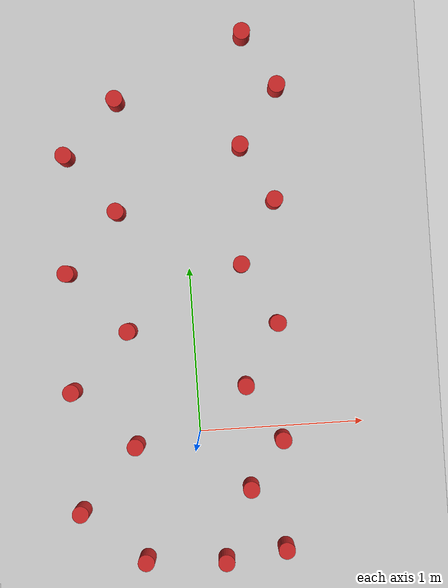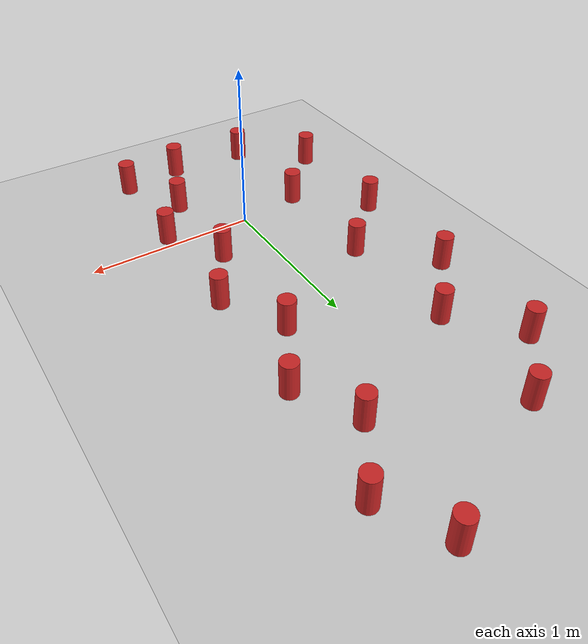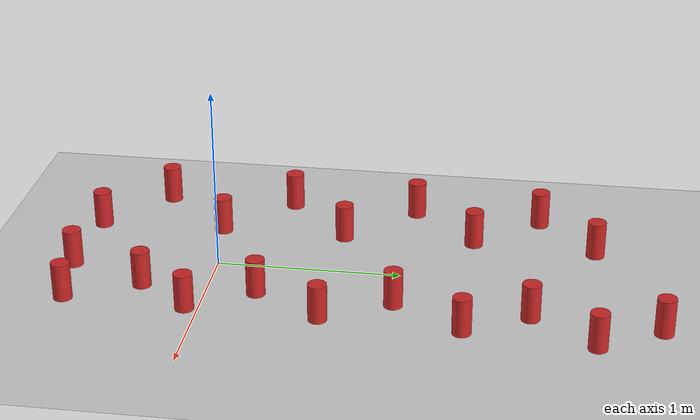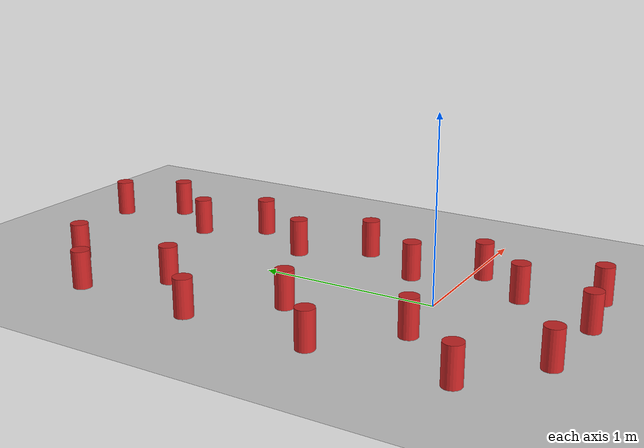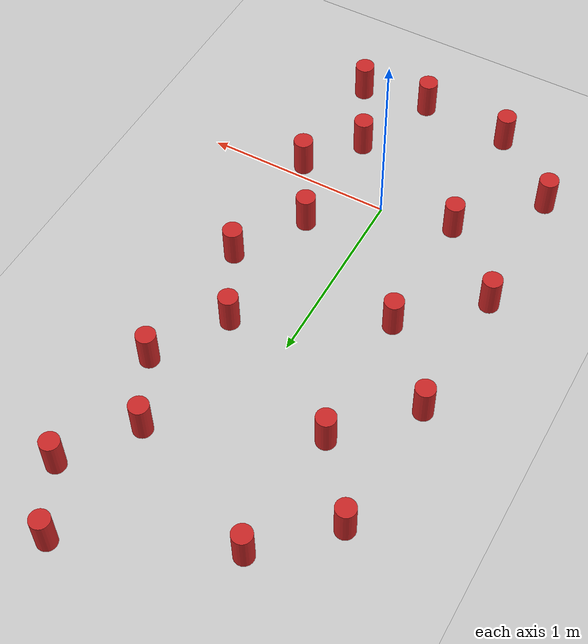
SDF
<sdf version="1.7">
 <world name="default">
  <model name="ground_plane">
   <static>1</static>
   <link name="link">
    <collision name="collision">
     <geometry><plane><normal>0 0 1</normal><size>100 100</size></plane></geometry>
     <surface>
      <contact><collide_bitmask>65535</collide_bitmask></contact>
      <friction><ode><mu>100</mu><mu2>50</mu2></ode></friction>
     </surface>
    </collision>
    <visual name="visual">
     <cast_shadows>0</cast_shadows>
     <geometry><plane><normal>0 0 1</normal><size>100 100</size></plane></geometry>
     <material>
      <script><uri>file://media/materials/scripts/gazebo.material</uri><name>Gazebo/Grey</name></script>
     </material>
    </visual>
   </link>
  </model>
  <model name="static2">
   <link name="link_0">
    <inertial>
     <mass>0.00215539</mass>
     <inertia>
      <ixx>9.22e-06</ixx>
      <ixy>0</ixy>
      <ixz>0</ixz>
      <iyy>9.22e-06</iyy>
      <iyz>0</iyz>
      <izz>2.78e-06</izz>
     </inertia>
    </inertial>
    <pose>0.341007 0.332546 -0 0 -0 0</pose>
    <visual name="visual">
     <geometry><cylinder><radius>0.0508338</radius><length>0.208743</length></cylinder></geometry>
     <material>
      <lighting>1</lighting>
      <script><uri>file://media/materials/scripts/gazebo.material</uri><name>Gazebo/Red</name></script>
      <shader type="pixel"><normal_map>__default__</normal_map></shader>
      <ambient>1 0 0 1</ambient>
      <diffuse>1 0 0 1</diffuse>
      <specular>0.1 0.1 0.1 1</specular>
      <emissive>0 0 0 1</emissive>
     </material>
    </visual>
    <collision name="collision">
     <geometry><cylinder><radius>0.050834</radius><length>0.208743</length></cylinder></geometry>
     <surface>
      <friction>
       <ode><mu>1</mu><mu2>1</mu2><fdir1>0 0 0</fdir1><slip1>0</slip1><slip2>0</slip2></ode>
       <torsional>
        <coefficient>1</coefficient>
        <patch_radius>0</patch_radius>
        <surface_radius>0</surface_radius>
        <use_patch_radius>1</use_patch_radius>
        <ode><slip>0</slip></ode>
       </torsional>
      </friction>
      <bounce><restitution_coefficient>0</restitution_coefficient><threshold>1e+06</threshold></bounce>
      <contact>
       <collide_without_contact>0</collide_without_contact>
       <collide_without_contact_bitmask>1</collide_without_contact_bitmask>
       <collide_bitmask>1</collide_bitmask>
       <ode>
        <soft_cfm>0</soft_cfm>
        <soft_erp>0.2</soft_erp>
        <kp>1e+13</kp>
        <kd>1</kd>
        <max_vel>0.01</max_vel>
        <min_depth>0</min_depth>
       </ode>
       <bullet>
        <split_impulse>1</split_impulse>
        <split_impulse_penetration_threshold>-0.01</split_impulse_penetration_threshold>
        <soft_cfm>0</soft_cfm>
        <soft_erp>0.2</soft_erp>
        <kp>1e+13</kp>
        <kd>1</kd>
       </bullet>
      </contact>
     </surface>
    </collision>
   </link>
   <link name="link_0_clone">
    <inertial>
     <mass>0.00215539</mass>
     <inertia>
      <ixx>9.22e-06</ixx>
      <ixy>0</ixy>
      <ixz>0</ixz>
      <iyy>9.22e-06</iyy>
      <iyz>0</iyz>
      <izz>2.78e-06</izz>
     </inertia>
    </inertial>
    <pose>0.321309 -0.399135 -0 0 -0 0</pose>
    <visual name="visual">
     <geometry><cylinder><radius>0.0508338</radius><length>0.208743</length></cylinder></geometry>
     <material>
      <lighting>1</lighting>
      <script><uri>file://media/materials/scripts/gazebo.material</uri><name>Gazebo/Red</name></script>
      <shader type="pixel"><normal_map>__default__</normal_map></shader>
      <ambient>1 0 0 1</ambient>
      <diffuse>1 0 0 1</diffuse>
      <specular>0.1 0.1 0.1 1</specular>
      <emissive>0 0 0 1</emissive>
     </material>
    </visual>
    <collision name="collision">
     <geometry><cylinder><radius>0.050834</radius><length>0.208743</length></cylinder></geometry>
     <surface>
      <friction>
       <ode><mu>1</mu><mu2>1</mu2><fdir1>0 0 0</fdir1><slip1>0</slip1><slip2>0</slip2></ode>
       <torsional>
        <coefficient>1</coefficient>
        <patch_radius>0</patch_radius>
        <surface_radius>0</surface_radius>
        <use_patch_radius>1</use_patch_radius>
        <ode><slip>0</slip></ode>
       </torsional>
      </friction>
      <bounce><restitution_coefficient>0</restitution_coefficient><threshold>1e+06</threshold></bounce>
      <contact>
       <collide_without_contact>0</collide_without_contact>
       <collide_without_contact_bitmask>1</collide_without_contact_bitmask>
       <collide_bitmask>1</collide_bitmask>
       <ode>
        <soft_cfm>0</soft_cfm>
        <soft_erp>0.2</soft_erp>
        <kp>1e+13</kp>
        <kd>1</kd>
        <max_vel>0.01</max_vel>
        <min_depth>0</min_depth>
       </ode>
       <bullet>
        <split_impulse>1</split_impulse>
        <split_impulse_penetration_threshold>-0.01</split_impulse_penetration_threshold>
        <soft_cfm>0</soft_cfm>
        <soft_erp>0.2</soft_erp>
        <kp>1e+13</kp>
        <kd>1</kd>
       </bullet>
      </contact>
     </surface>
    </collision>
   </link>
   <link name="link_0_clone_0">
    <inertial>
     <mass>0.00215539</mass>
     <inertia>
      <ixx>9.22e-06</ixx>
      <ixy>0</ixy>
      <ixz>0</ixz>
      <iyy>9.22e-06</iyy>
      <iyz>0</iyz>
      <izz>2.78e-06</izz>
     </inertia>
    </inertial>
    <pose>0.537186 -0.03451 -0 0 -0 0</pose>
    <visual name="visual">
     <geometry><cylinder><radius>0.0508338</radius><length>0.208743</length></cylinder></geometry>
     <material>
      <lighting>1</lighting>
      <script><uri>file://media/materials/scripts/gazebo.material</uri><name>Gazebo/Red</name></script>
      <shader type="pixel"><normal_map>__default__</normal_map></shader>
      <ambient>1 0 0 1</ambient>
      <diffuse>1 0 0 1</diffuse>
      <specular>0.1 0.1 0.1 1</specular>
      <emissive>0 0 0 1</emissive>
     </material>
    </visual>
    <collision name="collision">
     <geometry><cylinder><radius>0.050834</radius><length>0.208743</length></cylinder></geometry>
     <surface>
      <friction>
       <ode><mu>1</mu><mu2>1</mu2><fdir1>0 0 0</fdir1><slip1>0</slip1><slip2>0</slip2></ode>
       <torsional>
        <coefficient>1</coefficient>
        <patch_radius>0</patch_radius>
        <surface_radius>0</surface_radius>
        <use_patch_radius>1</use_patch_radius>
        <ode><slip>0</slip></ode>
       </torsional>
      </friction>
      <bounce><restitution_coefficient>0</restitution_coefficient><threshold>1e+06</threshold></bounce>
      <contact>
       <collide_without_contact>0</collide_without_contact>
       <collide_without_contact_bitmask>1</collide_without_contact_bitmask>
       <collide_bitmask>1</collide_bitmask>
       <ode>
        <soft_cfm>0</soft_cfm>
        <soft_erp>0.2</soft_erp>
        <kp>1e+13</kp>
        <kd>1</kd>
        <max_vel>0.01</max_vel>
        <min_depth>0</min_depth>
       </ode>
       <bullet>
        <split_impulse>1</split_impulse>
        <split_impulse_penetration_threshold>-0.01</split_impulse_penetration_threshold>
        <soft_cfm>0</soft_cfm>
        <soft_erp>0.2</soft_erp>
        <kp>1e+13</kp>
        <kd>1</kd>
       </bullet>
      </contact>
     </surface>
    </collision>
   </link>
   <link name="link_0_clone_1">
    <inertial>
     <mass>0.00215539</mass>
     <inertia>
      <ixx>9.22e-06</ixx>
      <ixy>0</ixy>
      <ixz>0</ixz>
      <iyy>9.22e-06</iyy>
      <iyz>0</iyz>
      <izz>2.78e-06</izz>
     </inertia>
    </inertial>
    <pose>0.564834 0.70816 -0 0 -0 0</pose>
    <visual name="visual">
     <geometry><cylinder><radius>0.0508338</radius><length>0.208743</length></cylinder></geometry>
     <material>
      <lighting>1</lighting>
      <script><uri>file://media/materials/scripts/gazebo.material</uri><name>Gazebo/Red</name></script>
      <shader type="pixel"><normal_map>__default__</normal_map></shader>
      <ambient>1 0 0 1</ambient>
      <diffuse>1 0 0 1</diffuse>
      <specular>0.1 0.1 0.1 1</specular>
      <emissive>0 0 0 1</emissive>
     </material>
    </visual>
    <collision name="collision">
     <geometry><cylinder><radius>0.050834</radius><length>0.208743</length></cylinder></geometry>
     <surface>
      <friction>
       <ode><mu>1</mu><mu2>1</mu2><fdir1>0 0 0</fdir1><slip1>0</slip1><slip2>0</slip2></ode>
       <torsional>
        <coefficient>1</coefficient>
        <patch_radius>0</patch_radius>
        <surface_radius>0</surface_radius>
        <use_patch_radius>1</use_patch_radius>
        <ode><slip>0</slip></ode>
       </torsional>
      </friction>
      <bounce><restitution_coefficient>0</restitution_coefficient><threshold>1e+06</threshold></bounce>
      <contact>
       <collide_without_contact>0</collide_without_contact>
       <collide_without_contact_bitmask>1</collide_without_contact_bitmask>
       <collide_bitmask>1</collide_bitmask>
       <ode>
        <soft_cfm>0</soft_cfm>
        <soft_erp>0.2</soft_erp>
        <kp>1e+13</kp>
        <kd>1</kd>
        <max_vel>0.01</max_vel>
        <min_depth>0</min_depth>
       </ode>
       <bullet>
        <split_impulse>1</split_impulse>
        <split_impulse_penetration_threshold>-0.01</split_impulse_penetration_threshold>
        <soft_cfm>0</soft_cfm>
        <soft_erp>0.2</soft_erp>
        <kp>1e+13</kp>
        <kd>1</kd>
       </bullet>
      </contact>
     </surface>
    </collision>
   </link>
   <link name="link_0_clone_2">
    <inertial>
     <mass>0.00215539</mass>
     <inertia>
      <ixx>9.22e-06</ixx>
      <ixy>0</ixy>
      <ixz>0</ixz>
      <iyy>9.22e-06</iyy>
      <iyz>0</iyz>
      <izz>2.78e-06</izz>
     </inertia>
    </inertial>
    <pose>0.379461 1.04774 -0 0 -0 0</pose>
    <visual name="visual">
     <geometry><cylinder><radius>0.0508338</radius><length>0.208743</length></cylinder></geometry>
     <material>
      <lighting>1</lighting>
      <script><uri>file://media/materials/scripts/gazebo.material</uri><name>Gazebo/Red</name></script>
      <shader type="pixel"><normal_map>__default__</normal_map></shader>
      <ambient>1 0 0 1</ambient>
      <diffuse>1 0 0 1</diffuse>
      <specular>0.1 0.1 0.1 1</specular>
      <emissive>0 0 0 1</emissive>
     </material>
    </visual>
    <collision name="collision">
     <geometry><cylinder><radius>0.050834</radius><length>0.208743</length></cylinder></geometry>
     <surface>
      <friction>
       <ode><mu>1</mu><mu2>1</mu2><fdir1>0 0 0</fdir1><slip1>0</slip1><slip2>0</slip2></ode>
       <torsional>
        <coefficient>1</coefficient>
        <patch_radius>0</patch_radius>
        <surface_radius>0</surface_radius>
        <use_patch_radius>1</use_patch_radius>
        <ode><slip>0</slip></ode>
       </torsional>
      </friction>
      <bounce><restitution_coefficient>0</restitution_coefficient><threshold>1e+06</threshold></bounce>
      <contact>
       <collide_without_contact>0</collide_without_contact>
       <collide_without_contact_bitmask>1</collide_without_contact_bitmask>
       <collide_bitmask>1</collide_bitmask>
       <ode>
        <soft_cfm>0</soft_cfm>
        <soft_erp>0.2</soft_erp>
        <kp>1e+13</kp>
        <kd>1</kd>
        <max_vel>0.01</max_vel>
        <min_depth>0</min_depth>
       </ode>
       <bullet>
        <split_impulse>1</split_impulse>
        <split_impulse_penetration_threshold>-0.01</split_impulse_penetration_threshold>
        <soft_cfm>0</soft_cfm>
        <soft_erp>0.2</soft_erp>
        <kp>1e+13</kp>
        <kd>1</kd>
       </bullet>
      </contact>
     </surface>
    </collision>
   </link>
   <link name="link_0_clone_3">
    <inertial>
     <mass>0.00215539</mass>
     <inertia>
      <ixx>9.22e-06</ixx>
      <ixy>0</ixy>
      <ixz>0</ixz>
      <iyy>9.22e-06</iyy>
      <iyz>0</iyz>
      <izz>2.78e-06</izz>
     </inertia>
    </inertial>
    <pose>0.621634 1.39294 -0 0 -0 0</pose>
    <visual name="visual">
     <geometry><cylinder><radius>0.0508338</radius><length>0.208743</length></cylinder></geometry>
     <material>
      <lighting>1</lighting>
      <script><uri>file://media/materials/scripts/gazebo.material</uri><name>Gazebo/Red</name></script>
      <shader type="pixel"><normal_map>__default__</normal_map></shader>
      <ambient>1 0 0 1</ambient>
      <diffuse>1 0 0 1</diffuse>
      <specular>0.1 0.1 0.1 1</specular>
      <emissive>0 0 0 1</emissive>
     </material>
    </visual>
    <collision name="collision">
     <geometry><cylinder><radius>0.050834</radius><length>0.208743</length></cylinder></geometry>
     <surface>
      <friction>
       <ode><mu>1</mu><mu2>1</mu2><fdir1>0 0 0</fdir1><slip1>0</slip1><slip2>0</slip2></ode>
       <torsional>
        <coefficient>1</coefficient>
        <patch_radius>0</patch_radius>
        <surface_radius>0</surface_radius>
        <use_patch_radius>1</use_patch_radius>
        <ode><slip>0</slip></ode>
       </torsional>
      </friction>
      <bounce><restitution_coefficient>0</restitution_coefficient><threshold>1e+06</threshold></bounce>
      <contact>
       <collide_without_contact>0</collide_without_contact>
       <collide_without_contact_bitmask>1</collide_without_contact_bitmask>
       <collide_bitmask>1</collide_bitmask>
       <ode>
        <soft_cfm>0</soft_cfm>
        <soft_erp>0.2</soft_erp>
        <kp>1e+13</kp>
        <kd>1</kd>
        <max_vel>0.01</max_vel>
        <min_depth>0</min_depth>
       </ode>
       <bullet>
        <split_impulse>1</split_impulse>
        <split_impulse_penetration_threshold>-0.01</split_impulse_penetration_threshold>
        <soft_cfm>0</soft_cfm>
        <soft_erp>0.2</soft_erp>
        <kp>1e+13</kp>
        <kd>1</kd>
       </bullet>
      </contact>
     </surface>
    </collision>
   </link>
   <link name="link_0_clone_3_clone">
    <inertial>
     <mass>0.00215539</mass>
     <inertia>
      <ixx>9.22e-06</ixx>
      <ixy>0</ixy>
      <ixz>0</ixz>
      <iyy>9.22e-06</iyy>
      <iyz>0</iyz>
      <izz>2.78e-06</izz>
     </inertia>
    </inertial>
    <pose>0.432894 1.72328 -0 0 -0 0</pose>
    <visual name="visual">
     <geometry><cylinder><radius>0.0508338</radius><length>0.208743</length></cylinder></geometry>
     <material>
      <lighting>1</lighting>
      <script><uri>file://media/materials/scripts/gazebo.material</uri><name>Gazebo/Red</name></script>
      <shader type="pixel"><normal_map>__default__</normal_map></shader>
      <ambient>1 0 0 1</ambient>
      <diffuse>1 0 0 1</diffuse>
      <specular>0.1 0.1 0.1 1</specular>
      <emissive>0 0 0 1</emissive>
     </material>
    </visual>
    <collision name="collision">
     <geometry><cylinder><radius>0.050834</radius><length>0.208743</length></cylinder></geometry>
     <surface>
      <friction>
       <ode><mu>1</mu><mu2>1</mu2><fdir1>0 0 0</fdir1><slip1>0</slip1><slip2>0</slip2></ode>
       <torsional>
        <coefficient>1</coefficient>
        <patch_radius>0</patch_radius>
        <surface_radius>0</surface_radius>
        <use_patch_radius>1</use_patch_radius>
        <ode><slip>0</slip></ode>
       </torsional>
      </friction>
      <bounce><restitution_coefficient>0</restitution_coefficient><threshold>1e+06</threshold></bounce>
      <contact>
       <collide_without_contact>0</collide_without_contact>
       <collide_without_contact_bitmask>1</collide_without_contact_bitmask>
       <collide_bitmask>1</collide_bitmask>
       <ode>
        <soft_cfm>0</soft_cfm>
        <soft_erp>0.2</soft_erp>
        <kp>1e+13</kp>
        <kd>1</kd>
        <max_vel>0.01</max_vel>
        <min_depth>0</min_depth>
       </ode>
       <bullet>
        <split_impulse>1</split_impulse>
        <split_impulse_penetration_threshold>-0.01</split_impulse_penetration_threshold>
        <soft_cfm>0</soft_cfm>
        <soft_erp>0.2</soft_erp>
        <kp>1e+13</kp>
        <kd>1</kd>
       </bullet>
      </contact>
     </surface>
    </collision>
   </link>
   <link name="link_0_clone_3_clone_0">
    <inertial>
     <mass>0.00215539</mass>
     <inertia>
      <ixx>9.22e-06</ixx>
      <ixy>0</ixy>
      <ixz>0</ixz>
      <iyy>9.22e-06</iyy>
      <iyz>0</iyz>
      <izz>2.78e-06</izz>
     </inertia>
    </inertial>
    <pose>0.523475 -0.737358 -0 0 -0 0</pose>
    <visual name="visual">
     <geometry><cylinder><radius>0.0508338</radius><length>0.208743</length></cylinder></geometry>
     <material>
      <lighting>1</lighting>
      <script><uri>file://media/materials/scripts/gazebo.material</uri><name>Gazebo/Red</name></script>
      <shader type="pixel"><normal_map>__default__</normal_map></shader>
      <ambient>1 0 0 1</ambient>
      <diffuse>1 0 0 1</diffuse>
      <specular>0.1 0.1 0.1 1</specular>
      <emissive>0 0 0 1</emissive>
     </material>
    </visual>
    <collision name="collision">
     <geometry><cylinder><radius>0.050834</radius><length>0.208743</length></cylinder></geometry>
     <surface>
      <friction>
       <ode><mu>1</mu><mu2>1</mu2><fdir1>0 0 0</fdir1><slip1>0</slip1><slip2>0</slip2></ode>
       <torsional>
        <coefficient>1</coefficient>
        <patch_radius>0</patch_radius>
        <surface_radius>0</surface_radius>
        <use_patch_radius>1</use_patch_radius>
        <ode><slip>0</slip></ode>
       </torsional>
      </friction>
      <bounce><restitution_coefficient>0</restitution_coefficient><threshold>1e+06</threshold></bounce>
      <contact>
       <collide_without_contact>0</collide_without_contact>
       <collide_without_contact_bitmask>1</collide_without_contact_bitmask>
       <collide_bitmask>1</collide_bitmask>
       <ode>
        <soft_cfm>0</soft_cfm>
        <soft_erp>0.2</soft_erp>
        <kp>1e+13</kp>
        <kd>1</kd>
        <max_vel>0.01</max_vel>
        <min_depth>0</min_depth>
       </ode>
       <bullet>
        <split_impulse>1</split_impulse>
        <split_impulse_penetration_threshold>-0.01</split_impulse_penetration_threshold>
        <soft_cfm>0</soft_cfm>
        <soft_erp>0.2</soft_erp>
        <kp>1e+13</kp>
        <kd>1</kd>
       </bullet>
      </contact>
     </surface>
    </collision>
   </link>
   <link name="link_0_clone_3_clone_1">
    <inertial>
     <mass>0.00215539</mass>
     <inertia>
      <ixx>9.22e-06</ixx>
      <ixy>0</ixy>
      <ixz>0</ixz>
      <iyy>9.22e-06</iyy>
      <iyz>0</iyz>
      <izz>2.78e-06</izz>
     </inertia>
    </inertial>
    <pose>0.312156 -1.01915 -0 0 -0 0</pose>
    <visual name="visual">
     <geometry><cylinder><radius>0.0508338</radius><length>0.208743</length></cylinder></geometry>
     <material>
      <lighting>1</lighting>
      <script><uri>file://media/materials/scripts/gazebo.material</uri><name>Gazebo/Red</name></script>
      <shader type="pixel"><normal_map>__default__</normal_map></shader>
      <ambient>1 0 0 1</ambient>
      <diffuse>1 0 0 1</diffuse>
      <specular>0.1 0.1 0.1 1</specular>
      <emissive>0 0 0 1</emissive>
     </material>
    </visual>
    <collision name="collision">
     <geometry><cylinder><radius>0.050834</radius><length>0.208743</length></cylinder></geometry>
     <surface>
      <friction>
       <ode><mu>1</mu><mu2>1</mu2><fdir1>0 0 0</fdir1><slip1>0</slip1><slip2>0</slip2></ode>
       <torsional>
        <coefficient>1</coefficient>
        <patch_radius>0</patch_radius>
        <surface_radius>0</surface_radius>
        <use_patch_radius>1</use_patch_radius>
        <ode><slip>0</slip></ode>
       </torsional>
      </friction>
      <bounce><restitution_coefficient>0</restitution_coefficient><threshold>1e+06</threshold></bounce>
      <contact>
       <collide_without_contact>0</collide_without_contact>
       <collide_without_contact_bitmask>1</collide_without_contact_bitmask>
       <collide_bitmask>1</collide_bitmask>
       <ode>
        <soft_cfm>0</soft_cfm>
        <soft_erp>0.2</soft_erp>
        <kp>1e+13</kp>
        <kd>1</kd>
        <max_vel>0.01</max_vel>
        <min_depth>0</min_depth>
       </ode>
       <bullet>
        <split_impulse>1</split_impulse>
        <split_impulse_penetration_threshold>-0.01</split_impulse_penetration_threshold>
        <soft_cfm>0</soft_cfm>
        <soft_erp>0.2</soft_erp>
        <kp>1e+13</kp>
        <kd>1</kd>
       </bullet>
      </contact>
     </surface>
    </collision>
   </link>
   <link name="link_0_clone_3_clone_2">
    <inertial>
     <mass>0.00215539</mass>
     <inertia>
      <ixx>9.22e-06</ixx>
      <ixy>0</ixy>
      <ixz>0</ixz>
      <iyy>9.22e-06</iyy>
      <iyz>0</iyz>
      <izz>2.78e-06</izz>
     </inertia>
    </inertial>
    <pose>0.500393 -1.39661 -0 0 -0 0</pose>
    <visual name="visual">
     <geometry><cylinder><radius>0.0508338</radius><length>0.208743</length></cylinder></geometry>
     <material>
      <lighting>1</lighting>
      <script><uri>file://media/materials/scripts/gazebo.material</uri><name>Gazebo/Red</name></script>
      <shader type="pixel"><normal_map>__default__</normal_map></shader>
      <ambient>1 0 0 1</ambient>
      <diffuse>1 0 0 1</diffuse>
      <specular>0.1 0.1 0.1 1</specular>
      <emissive>0 0 0 1</emissive>
     </material>
    </visual>
    <collision name="collision">
     <geometry><cylinder><radius>0.050834</radius><length>0.208743</length></cylinder></geometry>
     <surface>
      <friction>
       <ode><mu>1</mu><mu2>1</mu2><fdir1>0 0 0</fdir1><slip1>0</slip1><slip2>0</slip2></ode>
       <torsional>
        <coefficient>1</coefficient>
        <patch_radius>0</patch_radius>
        <surface_radius>0</surface_radius>
        <use_patch_radius>1</use_patch_radius>
        <ode><slip>0</slip></ode>
       </torsional>
      </friction>
      <bounce><restitution_coefficient>0</restitution_coefficient><threshold>1e+06</threshold></bounce>
      <contact>
       <collide_without_contact>0</collide_without_contact>
       <collide_without_contact_bitmask>1</collide_without_contact_bitmask>
       <collide_bitmask>1</collide_bitmask>
       <ode>
        <soft_cfm>0</soft_cfm>
        <soft_erp>0.2</soft_erp>
        <kp>1e+13</kp>
        <kd>1</kd>
        <max_vel>0.01</max_vel>
        <min_depth>0</min_depth>
       </ode>
       <bullet>
        <split_impulse>1</split_impulse>
        <split_impulse_penetration_threshold>-0.01</split_impulse_penetration_threshold>
        <soft_cfm>0</soft_cfm>
        <soft_erp>0.2</soft_erp>
        <kp>1e+13</kp>
        <kd>1</kd>
       </bullet>
      </contact>
     </surface>
    </collision>
   </link>
   <link name="link_0_clone_3_clone_2_clone">
    <inertial>
     <mass>0.00215539</mass>
     <inertia>
      <ixx>9.22e-06</ixx>
      <ixy>0</ixy>
      <ixz>0</ixz>
      <iyy>9.22e-06</iyy>
      <iyz>0</iyz>
      <izz>2.78e-06</izz>
     </inertia>
    </inertial>
    <pose>-0.345292 -1.41439 -0 0 -0 0</pose>
    <visual name="visual">
     <geometry><cylinder><radius>0.0508338</radius><length>0.208743</length></cylinder></geometry>
     <material>
      <lighting>1</lighting>
      <script><uri>file://media/materials/scripts/gazebo.material</uri><name>Gazebo/Red</name></script>
      <shader type="pixel"><normal_map>__default__</normal_map></shader>
      <ambient>1 0 0 1</ambient>
      <diffuse>1 0 0 1</diffuse>
      <specular>0.1 0.1 0.1 1</specular>
      <emissive>0 0 0 1</emissive>
     </material>
    </visual>
    <collision name="collision">
     <geometry><cylinder><radius>0.050834</radius><length>0.208743</length></cylinder></geometry>
     <surface>
      <friction>
       <ode><mu>1</mu><mu2>1</mu2><fdir1>0 0 0</fdir1><slip1>0</slip1><slip2>0</slip2></ode>
       <torsional>
        <coefficient>1</coefficient>
        <patch_radius>0</patch_radius>
        <surface_radius>0</surface_radius>
        <use_patch_radius>1</use_patch_radius>
        <ode><slip>0</slip></ode>
       </torsional>
      </friction>
      <bounce><restitution_coefficient>0</restitution_coefficient><threshold>1e+06</threshold></bounce>
      <contact>
       <collide_without_contact>0</collide_without_contact>
       <collide_without_contact_bitmask>1</collide_without_contact_bitmask>
       <collide_bitmask>1</collide_bitmask>
       <ode>
        <soft_cfm>0</soft_cfm>
        <soft_erp>0.2</soft_erp>
        <kp>1e+13</kp>
        <kd>1</kd>
        <max_vel>0.01</max_vel>
        <min_depth>0</min_depth>
       </ode>
       <bullet>
        <split_impulse>1</split_impulse>
        <split_impulse_penetration_threshold>-0.01</split_impulse_penetration_threshold>
        <soft_cfm>0</soft_cfm>
        <soft_erp>0.2</soft_erp>
        <kp>1e+13</kp>
        <kd>1</kd>
       </bullet>
      </contact>
     </surface>
    </collision>
   </link>
   <link name="link_0_clone_3_clone_2_clone_0">
    <inertial>
     <mass>0.00215539</mass>
     <inertia>
      <ixx>9.22e-06</ixx>
      <ixy>0</ixy>
      <ixz>0</ixz>
      <iyy>9.22e-06</iyy>
      <iyz>0</iyz>
      <izz>2.78e-06</izz>
     </inertia>
    </inertial>
    <pose>-0.365407 -0.720779 -0 0 -0 0</pose>
    <visual name="visual">
     <geometry><cylinder><radius>0.0508338</radius><length>0.208743</length></cylinder></geometry>
     <material>
      <lighting>1</lighting>
      <script><uri>file://media/materials/scripts/gazebo.material</uri><name>Gazebo/Red</name></script>
      <shader type="pixel"><normal_map>__default__</normal_map></shader>
      <ambient>1 0 0 1</ambient>
      <diffuse>1 0 0 1</diffuse>
      <specular>0.1 0.1 0.1 1</specular>
      <emissive>0 0 0 1</emissive>
     </material>
    </visual>
    <collision name="collision">
     <geometry><cylinder><radius>0.050834</radius><length>0.208743</length></cylinder></geometry>
     <surface>
      <friction>
       <ode><mu>1</mu><mu2>1</mu2><fdir1>0 0 0</fdir1><slip1>0</slip1><slip2>0</slip2></ode>
       <torsional>
        <coefficient>1</coefficient>
        <patch_radius>0</patch_radius>
        <surface_radius>0</surface_radius>
        <use_patch_radius>1</use_patch_radius>
        <ode><slip>0</slip></ode>
       </torsional>
      </friction>
      <bounce><restitution_coefficient>0</restitution_coefficient><threshold>1e+06</threshold></bounce>
      <contact>
       <collide_without_contact>0</collide_without_contact>
       <collide_without_contact_bitmask>1</collide_without_contact_bitmask>
       <collide_bitmask>1</collide_bitmask>
       <ode>
        <soft_cfm>0</soft_cfm>
        <soft_erp>0.2</soft_erp>
        <kp>1e+13</kp>
        <kd>1</kd>
        <max_vel>0.01</max_vel>
        <min_depth>0</min_depth>
       </ode>
       <bullet>
        <split_impulse>1</split_impulse>
        <split_impulse_penetration_threshold>-0.01</split_impulse_penetration_threshold>
        <soft_cfm>0</soft_cfm>
        <soft_erp>0.2</soft_erp>
        <kp>1e+13</kp>
        <kd>1</kd>
       </bullet>
      </contact>
     </surface>
    </collision>
   </link>
   <link name="link_0_clone_3_clone_2_clone_1">
    <inertial>
     <mass>0.00215539</mass>
     <inertia>
      <ixx>9.22e-06</ixx>
      <ixy>0</ixy>
      <ixz>0</ixz>
      <iyy>9.22e-06</iyy>
      <iyz>0</iyz>
      <izz>2.78e-06</izz>
     </inertia>
    </inertial>
    <pose>-0.368665 -0.027237 -0 0 -0 0</pose>
    <visual name="visual">
     <geometry><cylinder><radius>0.0508338</radius><length>0.208743</length></cylinder></geometry>
     <material>
      <lighting>1</lighting>
      <script><uri>file://media/materials/scripts/gazebo.material</uri><name>Gazebo/Red</name></script>
      <shader type="pixel"><normal_map>__default__</normal_map></shader>
      <ambient>1 0 0 1</ambient>
      <diffuse>1 0 0 1</diffuse>
      <specular>0.1 0.1 0.1 1</specular>
      <emissive>0 0 0 1</emissive>
     </material>
    </visual>
    <collision name="collision">
     <geometry><cylinder><radius>0.050834</radius><length>0.208743</length></cylinder></geometry>
     <surface>
      <friction>
       <ode><mu>1</mu><mu2>1</mu2><fdir1>0 0 0</fdir1><slip1>0</slip1><slip2>0</slip2></ode>
       <torsional>
        <coefficient>1</coefficient>
        <patch_radius>0</patch_radius>
        <surface_radius>0</surface_radius>
        <use_patch_radius>1</use_patch_radius>
        <ode><slip>0</slip></ode>
       </torsional>
      </friction>
      <bounce><restitution_coefficient>0</restitution_coefficient><threshold>1e+06</threshold></bounce>
      <contact>
       <collide_without_contact>0</collide_without_contact>
       <collide_without_contact_bitmask>1</collide_without_contact_bitmask>
       <collide_bitmask>1</collide_bitmask>
       <ode>
        <soft_cfm>0</soft_cfm>
        <soft_erp>0.2</soft_erp>
        <kp>1e+13</kp>
        <kd>1</kd>
        <max_vel>0.01</max_vel>
        <min_depth>0</min_depth>
       </ode>
       <bullet>
        <split_impulse>1</split_impulse>
        <split_impulse_penetration_threshold>-0.01</split_impulse_penetration_threshold>
        <soft_cfm>0</soft_cfm>
        <soft_erp>0.2</soft_erp>
        <kp>1e+13</kp>
        <kd>1</kd>
       </bullet>
      </contact>
     </surface>
    </collision>
   </link>
   <link name="link_0_clone_3_clone_2_clone_2">
    <inertial>
     <mass>0.00215539</mass>
     <inertia>
      <ixx>9.22e-06</ixx>
      <ixy>0</ixy>
      <ixz>0</ixz>
      <iyy>9.22e-06</iyy>
      <iyz>0</iyz>
      <izz>2.78e-06</izz>
     </inertia>
    </inertial>
    <pose>-0.391719 0.697189 -0 0 -0 0</pose>
    <visual name="visual">
     <geometry><cylinder><radius>0.0508338</radius><length>0.208743</length></cylinder></geometry>
     <material>
      <lighting>1</lighting>
      <script><uri>file://media/materials/scripts/gazebo.material</uri><name>Gazebo/Red</name></script>
      <shader type="pixel"><normal_map>__default__</normal_map></shader>
      <ambient>1 0 0 1</ambient>
      <diffuse>1 0 0 1</diffuse>
      <specular>0.1 0.1 0.1 1</specular>
      <emissive>0 0 0 1</emissive>
     </material>
    </visual>
    <collision name="collision">
     <geometry><cylinder><radius>0.050834</radius><length>0.208743</length></cylinder></geometry>
     <surface>
      <friction>
       <ode><mu>1</mu><mu2>1</mu2><fdir1>0 0 0</fdir1><slip1>0</slip1><slip2>0</slip2></ode>
       <torsional>
        <coefficient>1</coefficient>
        <patch_radius>0</patch_radius>
        <surface_radius>0</surface_radius>
        <use_patch_radius>1</use_patch_radius>
        <ode><slip>0</slip></ode>
       </torsional>
      </friction>
      <bounce><restitution_coefficient>0</restitution_coefficient><threshold>1e+06</threshold></bounce>
      <contact>
       <collide_without_contact>0</collide_without_contact>
       <collide_without_contact_bitmask>1</collide_without_contact_bitmask>
       <collide_bitmask>1</collide_bitmask>
       <ode>
        <soft_cfm>0</soft_cfm>
        <soft_erp>0.2</soft_erp>
        <kp>1e+13</kp>
        <kd>1</kd>
        <max_vel>0.01</max_vel>
        <min_depth>0</min_depth>
       </ode>
       <bullet>
        <split_impulse>1</split_impulse>
        <split_impulse_penetration_threshold>-0.01</split_impulse_penetration_threshold>
        <soft_cfm>0</soft_cfm>
        <soft_erp>0.2</soft_erp>
        <kp>1e+13</kp>
        <kd>1</kd>
       </bullet>
      </contact>
     </surface>
    </collision>
   </link>
   <link name="link_0_clone_3_clone_2_clone_3">
    <inertial>
     <mass>0.00215539</mass>
     <inertia>
      <ixx>9.22e-06</ixx>
      <ixy>0</ixy>
      <ixz>0</ixz>
      <iyy>9.22e-06</iyy>
      <iyz>0</iyz>
      <izz>2.78e-06</izz>
     </inertia>
    </inertial>
    <pose>-0.354792 1.36973 -0 0 -0 0</pose>
    <visual name="visual">
     <geometry><cylinder><radius>0.0508338</radius><length>0.208743</length></cylinder></geometry>
     <material>
      <lighting>1</lighting>
      <script><uri>file://media/materials/scripts/gazebo.material</uri><name>Gazebo/Red</name></script>
      <shader type="pixel"><normal_map>__default__</normal_map></shader>
      <ambient>1 0 0 1</ambient>
      <diffuse>1 0 0 1</diffuse>
      <specular>0.1 0.1 0.1 1</specular>
      <emissive>0 0 0 1</emissive>
     </material>
    </visual>
    <collision name="collision">
     <geometry><cylinder><radius>0.050834</radius><length>0.208743</length></cylinder></geometry>
     <surface>
      <friction>
       <ode><mu>1</mu><mu2>1</mu2><fdir1>0 0 0</fdir1><slip1>0</slip1><slip2>0</slip2></ode>
       <torsional>
        <coefficient>1</coefficient>
        <patch_radius>0</patch_radius>
        <surface_radius>0</surface_radius>
        <use_patch_radius>1</use_patch_radius>
        <ode><slip>0</slip></ode>
       </torsional>
      </friction>
      <bounce><restitution_coefficient>0</restitution_coefficient><threshold>1e+06</threshold></bounce>
      <contact>
       <collide_without_contact>0</collide_without_contact>
       <collide_without_contact_bitmask>1</collide_without_contact_bitmask>
       <collide_bitmask>1</collide_bitmask>
       <ode>
        <soft_cfm>0</soft_cfm>
        <soft_erp>0.2</soft_erp>
        <kp>1e+13</kp>
        <kd>1</kd>
        <max_vel>0.01</max_vel>
        <min_depth>0</min_depth>
       </ode>
       <bullet>
        <split_impulse>1</split_impulse>
        <split_impulse_penetration_threshold>-0.01</split_impulse_penetration_threshold>
        <soft_cfm>0</soft_cfm>
        <soft_erp>0.2</soft_erp>
        <kp>1e+13</kp>
        <kd>1</kd>
       </bullet>
      </contact>
     </surface>
    </collision>
   </link>
   <link name="link_0_clone_3_clone_2_clone_4">
    <inertial>
     <mass>0.00215539</mass>
     <inertia>
      <ixx>9.22e-06</ixx>
      <ixy>0</ixy>
      <ixz>0</ixz>
      <iyy>9.22e-06</iyy>
      <iyz>0</iyz>
      <izz>2.78e-06</izz>
     </inertia>
    </inertial>
    <pose>-0.68068 1.05148 -0 0 -0 0</pose>
    <visual name="visual">
     <geometry><cylinder><radius>0.0508338</radius><length>0.208743</length></cylinder></geometry>
     <material>
      <lighting>1</lighting>
      <script><uri>file://media/materials/scripts/gazebo.material</uri><name>Gazebo/Red</name></script>
      <shader type="pixel"><normal_map>__default__</normal_map></shader>
      <ambient>1 0 0 1</ambient>
      <diffuse>1 0 0 1</diffuse>
      <specular>0.1 0.1 0.1 1</specular>
      <emissive>0 0 0 1</emissive>
     </material>
    </visual>
    <collision name="collision">
     <geometry><cylinder><radius>0.050834</radius><length>0.208743</length></cylinder></geometry>
     <surface>
      <friction>
       <ode><mu>1</mu><mu2>1</mu2><fdir1>0 0 0</fdir1><slip1>0</slip1><slip2>0</slip2></ode>
       <torsional>
        <coefficient>1</coefficient>
        <patch_radius>0</patch_radius>
        <surface_radius>0</surface_radius>
        <use_patch_radius>1</use_patch_radius>
        <ode><slip>0</slip></ode>
       </torsional>
      </friction>
      <bounce><restitution_coefficient>0</restitution_coefficient><threshold>1e+06</threshold></bounce>
      <contact>
       <collide_without_contact>0</collide_without_contact>
       <collide_without_contact_bitmask>1</collide_without_contact_bitmask>
       <collide_bitmask>1</collide_bitmask>
       <ode>
        <soft_cfm>0</soft_cfm>
        <soft_erp>0.2</soft_erp>
        <kp>1e+13</kp>
        <kd>1</kd>
        <max_vel>0.01</max_vel>
        <min_depth>0</min_depth>
       </ode>
       <bullet>
        <split_impulse>1</split_impulse>
        <split_impulse_penetration_threshold>-0.01</split_impulse_penetration_threshold>
        <soft_cfm>0</soft_cfm>
        <soft_erp>0.2</soft_erp>
        <kp>1e+13</kp>
        <kd>1</kd>
       </bullet>
      </contact>
     </surface>
    </collision>
   </link>
   <link name="link_0_clone_3_clone_2_clone_5">
    <inertial>
     <mass>0.00215539</mass>
     <inertia>
      <ixx>9.22e-06</ixx>
      <ixy>0</ixy>
      <ixz>0</ixz>
      <iyy>9.22e-06</iyy>
      <iyz>0</iyz>
      <izz>2.78e-06</izz>
     </inertia>
    </inertial>
    <pose>-0.714843 0.343764 -0 0 -0 0</pose>
    <visual name="visual">
     <geometry><cylinder><radius>0.0508338</radius><length>0.208743</length></cylinder></geometry>
     <material>
      <lighting>1</lighting>
      <script><uri>file://media/materials/scripts/gazebo.material</uri><name>Gazebo/Red</name></script>
      <shader type="pixel"><normal_map>__default__</normal_map></shader>
      <ambient>1 0 0 1</ambient>
      <diffuse>1 0 0 1</diffuse>
      <specular>0.1 0.1 0.1 1</specular>
      <emissive>0 0 0 1</emissive>
     </material>
    </visual>
    <collision name="collision">
     <geometry><cylinder><radius>0.050834</radius><length>0.208743</length></cylinder></geometry>
     <surface>
      <friction>
       <ode><mu>1</mu><mu2>1</mu2><fdir1>0 0 0</fdir1><slip1>0</slip1><slip2>0</slip2></ode>
       <torsional>
        <coefficient>1</coefficient>
        <patch_radius>0</patch_radius>
        <surface_radius>0</surface_radius>
        <use_patch_radius>1</use_patch_radius>
        <ode><slip>0</slip></ode>
       </torsional>
      </friction>
      <bounce><restitution_coefficient>0</restitution_coefficient><threshold>1e+06</threshold></bounce>
      <contact>
       <collide_without_contact>0</collide_without_contact>
       <collide_without_contact_bitmask>1</collide_without_contact_bitmask>
       <collide_bitmask>1</collide_bitmask>
       <ode>
        <soft_cfm>0</soft_cfm>
        <soft_erp>0.2</soft_erp>
        <kp>1e+13</kp>
        <kd>1</kd>
        <max_vel>0.01</max_vel>
        <min_depth>0</min_depth>
       </ode>
       <bullet>
        <split_impulse>1</split_impulse>
        <split_impulse_penetration_threshold>-0.01</split_impulse_penetration_threshold>
        <soft_cfm>0</soft_cfm>
        <soft_erp>0.2</soft_erp>
        <kp>1e+13</kp>
        <kd>1</kd>
       </bullet>
      </contact>
     </surface>
    </collision>
   </link>
   <link name="link_0_clone_3_clone_2_clone_6">
    <inertial>
     <mass>0.00215539</mass>
     <inertia>
      <ixx>9.22e-06</ixx>
      <ixy>0</ixy>
      <ixz>0</ixz>
      <iyy>9.22e-06</iyy>
      <iyz>0</iyz>
      <izz>2.78e-06</izz>
     </inertia>
    </inertial>
    <pose>-0.728786 -0.371246 -0 0 -0 0</pose>
    <visual name="visual">
     <geometry><cylinder><radius>0.0508338</radius><length>0.208743</length></cylinder></geometry>
     <material>
      <lighting>1</lighting>
      <script><uri>file://media/materials/scripts/gazebo.material</uri><name>Gazebo/Red</name></script>
      <shader type="pixel"><normal_map>__default__</normal_map></shader>
      <ambient>1 0 0 1</ambient>
      <diffuse>1 0 0 1</diffuse>
      <specular>0.1 0.1 0.1 1</specular>
      <emissive>0 0 0 1</emissive>
     </material>
    </visual>
    <collision name="collision">
     <geometry><cylinder><radius>0.050834</radius><length>0.208743</length></cylinder></geometry>
     <surface>
      <friction>
       <ode><mu>1</mu><mu2>1</mu2><fdir1>0 0 0</fdir1><slip1>0</slip1><slip2>0</slip2></ode>
       <torsional>
        <coefficient>1</coefficient>
        <patch_radius>0</patch_radius>
        <surface_radius>0</surface_radius>
        <use_patch_radius>1</use_patch_radius>
        <ode><slip>0</slip></ode>
       </torsional>
      </friction>
      <bounce><restitution_coefficient>0</restitution_coefficient><threshold>1e+06</threshold></bounce>
      <contact>
       <collide_without_contact>0</collide_without_contact>
       <collide_without_contact_bitmask>1</collide_without_contact_bitmask>
       <collide_bitmask>1</collide_bitmask>
       <ode>
        <soft_cfm>0</soft_cfm>
        <soft_erp>0.2</soft_erp>
        <kp>1e+13</kp>
        <kd>1</kd>
        <max_vel>0.01</max_vel>
        <min_depth>0</min_depth>
       </ode>
       <bullet>
        <split_impulse>1</split_impulse>
        <split_impulse_penetration_threshold>-0.01</split_impulse_penetration_threshold>
        <soft_cfm>0</soft_cfm>
        <soft_erp>0.2</soft_erp>
        <kp>1e+13</kp>
        <kd>1</kd>
       </bullet>
      </contact>
     </surface>
    </collision>
   </link>
   <link name="link_0_clone_3_clone_2_clone_7">
    <inertial>
     <mass>0.00215539</mass>
     <inertia>
      <ixx>9.22e-06</ixx>
      <ixy>0</ixy>
      <ixz>0</ixz>
      <iyy>9.22e-06</iyy>
      <iyz>0</iyz>
      <izz>2.78e-06</izz>
     </inertia>
    </inertial>
    <pose>-0.719218 -1.10007 -0 0 -0 0</pose>
    <visual name="visual">
     <geometry><cylinder><radius>0.0508338</radius><length>0.208743</length></cylinder></geometry>
     <material>
      <lighting>1</lighting>
      <script><uri>file://media/materials/scripts/gazebo.material</uri><name>Gazebo/Red</name></script>
      <shader type="pixel"><normal_map>__default__</normal_map></shader>
      <ambient>1 0 0 1</ambient>
      <diffuse>1 0 0 1</diffuse>
      <specular>0.1 0.1 0.1 1</specular>
      <emissive>0 0 0 1</emissive>
     </material>
    </visual>
    <collision name="collision">
     <geometry><cylinder><radius>0.050834</radius><length>0.208743</length></cylinder></geometry>
     <surface>
      <friction>
       <ode><mu>1</mu><mu2>1</mu2><fdir1>0 0 0</fdir1><slip1>0</slip1><slip2>0</slip2></ode>
       <torsional>
        <coefficient>1</coefficient>
        <patch_radius>0</patch_radius>
        <surface_radius>0</surface_radius>
        <use_patch_radius>1</use_patch_radius>
        <ode><slip>0</slip></ode>
       </torsional>
      </friction>
      <bounce><restitution_coefficient>0</restitution_coefficient><threshold>1e+06</threshold></bounce>
      <contact>
       <collide_without_contact>0</collide_without_contact>
       <collide_without_contact_bitmask>1</collide_without_contact_bitmask>
       <collide_bitmask>1</collide_bitmask>
       <ode>
        <soft_cfm>0</soft_cfm>
        <soft_erp>0.2</soft_erp>
        <kp>1e+13</kp>
        <kd>1</kd>
        <max_vel>0.01</max_vel>
        <min_depth>0</min_depth>
       </ode>
       <bullet>
        <split_impulse>1</split_impulse>
        <split_impulse_penetration_threshold>-0.01</split_impulse_penetration_threshold>
        <soft_cfm>0</soft_cfm>
        <soft_erp>0.2</soft_erp>
        <kp>1e+13</kp>
        <kd>1</kd>
       </bullet>
      </contact>
     </surface>
    </collision>
   </link>
   <link name="link_0_clone_3_clone_2_clone_8">
    <inertial>
     <mass>0.00215539</mass>
     <inertia>
      <ixx>9.22e-06</ixx>
      <ixy>0</ixy>
      <ixz>0</ixz>
      <iyy>9.22e-06</iyy>
      <iyz>0</iyz>
      <izz>2.78e-06</izz>
     </inertia>
    </inertial>
    <pose>0.135053 -1.44635 -0 0 -0 0</pose>
    <visual name="visual">
     <geometry><cylinder><radius>0.0508338</radius><length>0.208743</length></cylinder></geometry>
     <material>
      <lighting>1</lighting>
      <script><uri>file://media/materials/scripts/gazebo.material</uri><name>Gazebo/Red</name></script>
      <shader type="pixel"><normal_map>__default__</normal_map></shader>
      <ambient>1 0 0 1</ambient>
      <diffuse>1 0 0 1</diffuse>
      <specular>0.1 0.1 0.1 1</specular>
      <emissive>0 0 0 1</emissive>
     </material>
    </visual>
    <collision name="collision">
     <geometry><cylinder><radius>0.050834</radius><length>0.208743</length></cylinder></geometry>
     <surface>
      <friction>
       <ode><mu>1</mu><mu2>1</mu2><fdir1>0 0 0</fdir1><slip1>0</slip1><slip2>0</slip2></ode>
       <torsional>
        <coefficient>1</coefficient>
        <patch_radius>0</patch_radius>
        <surface_radius>0</surface_radius>
        <use_patch_radius>1</use_patch_radius>
        <ode><slip>0</slip></ode>
       </torsional>
      </friction>
      <bounce><restitution_coefficient>0</restitution_coefficient><threshold>1e+06</threshold></bounce>
      <contact>
       <collide_without_contact>0</collide_without_contact>
       <collide_without_contact_bitmask>1</collide_without_contact_bitmask>
       <collide_bitmask>1</collide_bitmask>
       <ode>
        <soft_cfm>0</soft_cfm>
        <soft_erp>0.2</soft_erp>
        <kp>1e+13</kp>
        <kd>1</kd>
        <max_vel>0.01</max_vel>
        <min_depth>0</min_depth>
       </ode>
       <bullet>
        <split_impulse>1</split_impulse>
        <split_impulse_penetration_threshold>-0.01</split_impulse_penetration_threshold>
        <soft_cfm>0</soft_cfm>
        <soft_erp>0.2</soft_erp>
        <kp>1e+13</kp>
        <kd>1</kd>
       </bullet>
      </contact>
     </surface>
    </collision>
   </link>
   <static>1</static>
   <pose>-0.022045 0.668964 0.10488 0 -0 0</pose>
  </model>
 </world>
</sdf>
